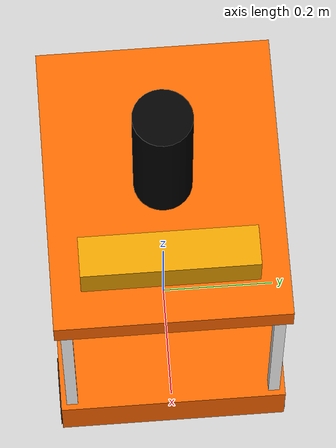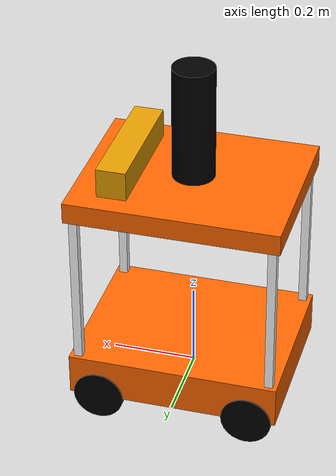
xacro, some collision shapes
<?xml version="1.0"?>
<robot name="arm" xmlns:xacro="http://www.ros.org/wiki/xacro">

    <xacro:include filename="$(find wyf_description)/urdf/wyf_base_gazebo.xacro" />

    <xacro:include filename="$(find wyf_description)/urdf/sensors/kinect_gazebo.xacro" />
   <xacro:include filename="$(find wyf_description)/urdf/sensors/lidar_gazebo.xacro" />

    <xacro:property name="kinect_offset_x" value="0.15" />
    <xacro:property name="kinect_offset_y" value="0" />
    <xacro:property name="kinect_offset_z" value="0.5" />

    <xacro:property name="lidar_offset_x" value="0" />
    <xacro:property name="lidar_offset_y" value="0" />
    <xacro:property name="lidar_offset_z" value="0.6" />

    <!-- kinect -->
    <joint name="kinect_joint" type="fixed">
        <origin xyz="${kinect_offset_x} ${kinect_offset_y} ${kinect_offset_z}" rpy="0 0 0" />
        <parent link="base_link"/>
        <child link="kinect_link"/>
    </joint>

    <xacro:kinect_camera prefix="kinect"/>

  <!-- lidar -->
    <joint name="lidar_joint" type="fixed">
        <origin xyz="${lidar_offset_x} ${lidar_offset_y} ${lidar_offset_z}" rpy="0 0 0" />
        <parent link="base_link"/>
        <child link="laser_link"/>
    </joint>

    <xacro:rplidar prefix="laser"/>

    <xacro:wyf_base_gazebo/>

</robot>

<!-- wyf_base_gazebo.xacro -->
<robot name="wyf" xmlns:xacro="http://www.ros.org/wiki/xacro">

    <!-- ////////////////////////////////////////////////
   PROPERTY LIST ///////////////////////////////////////
   //////////////////////////////////////////////////// -->

    <xacro:property name="M_PI" value="3.1415926" />
    <xacro:property name="base_mass" value="1" />
    <xacro:property name="base_size_L" value="0.5" />
    <xacro:property name="base_size_W" value="0.4" />
    <xacro:property name="base_size_H" value="0.1" />

    <xacro:property name="wheel_mass" value="0.2" />
    <xacro:property name="wheel_radius" value="0.06" />
    <xacro:property name="wheel_length" value="0.025" />
    <xacro:property name="wheel_joint_x" value="0.18" />
    <xacro:property name="wheel_joint_y" value="0.19" />
    <xacro:property name="wheel_joint_z" value="0.05" />

    <xacro:property name="pole_mass" value="0.2" />
    <xacro:property name="pole_size_L" value="0.02" />
    <xacro:property name="pole_size_W" value="0.02" />
    <xacro:property name="pole_size_H" value="0.45" />
    <xacro:property name="pole_joint_x" value="0.23" />
    <xacro:property name="pole_joint_y" value="0.18" />
    <xacro:property name="pole_joint_z" value="0.2" />

    <!-- ////////////////////////////////////////////////
   Defining the colors used in this robot///////////////
   //////////////////////////////////////////////////// -->

    <material name="yellow">
        <color rgba="1 0.4 0 1" />
    </material>
    <material name="black">
        <color rgba="0 0 0 0.95" />
    </material>
    <material name="gray">
        <color rgba="0.75 0.75 0.75 1" />
    </material>
    <material name="White">
        <color rgba="1 1 1 1" />
    </material>
    <material name="Blue">
        <color rgba="0 0 1 1" />
    </material>

    <!-- ////////////////////////////////////////////////
   Macro for inertia matrix/////////////////////////////
   //////////////////////////////////////////////////// -->
    <xacro:macro name="cylinder_inertial_matrix" params="m r h">
        <inertial>
            <mass value="${m}" />
            <inertia ixx="${m*(3*r*r+h*h)/12}" ixy="0" ixz="0" iyy="${m*(3*r*r+h*h)/12}" iyz="0" izz="${m*r*r/2}" />
        </inertial>
    </xacro:macro>

    <xacro:macro name="box_inertial_matrix" params="m a b c">
        <inertial>
            <mass value="${m}" />
            <inertia ixx="${m*(b*b+c*c)/12}" ixy="0" ixz="0" iyy="${m*(c*c+a*a)/12}" iyz="0" izz="${m*(a*a+b*b)/12}" />
        </inertial>
    </xacro:macro>

    <!-- ////////////////////////////////////////////////
   Macro for robot wheel/////////////////////////////
   //////////////////////////////////////////////////// -->

    <xacro:macro name="wheel" params="prefix1 prefix2 reflect1 reflect2">

        <joint name="${prefix1}_${prefix2}_wheel_joint" type="continuous">

            <origin xyz="${reflect1*wheel_joint_x} ${reflect2*wheel_joint_y} ${-wheel_joint_z}" rpy="0 0 0" />
            <parent link="base_link" />
            <child link="${prefix1}_${prefix2}_wheel_link" />
            <axis xyz="0 1 0" />
<limit effort="100" velocity="100"/>  			<!--limit 设置关节的速度、力和半径（仅当关节是revolute或prismatic时）-->
        <joint_properties damping="0.0" friction="0.0"/>  	<!--joint_properties设置一些属性 阻尼系数 摩擦系数-->

        </joint>

        <link name="${prefix1}_${prefix2}_wheel_link">
            <visual>
                <origin xyz="0 0 0" rpy="${M_PI/2} 0 0" />

                <geometry>
                    <cylinder radius="${wheel_radius}" length="${wheel_length}" />
                </geometry>

                <material name="black" />
            </visual>

            <collision>
                <origin xyz="0 0 0" rpy="${M_PI/2} 0 0" />

                <geometry>
                    <cylinder radius="${wheel_radius}" length="${wheel_length}" />
                </geometry>

            </collision>

            <xacro:cylinder_inertial_matrix m="${wheel_mass}" r="${wheel_radius}" h="${wheel_length}" />
        </link>

        <gazebo reference="${prefix1}_${prefix2}_wheel_link">
            <material>Gazebo/Black</material>
        </gazebo>

        <!-- /////////////////////////////////////////////////Transmission is important to link the joints and the controller //////////////////////////////////-->
        <transmission name="${prefix1}_${prefix2}_wheel_joint_trans">
            <type>transmission_interface/SimpleTransmission</type>
            <joint name="${prefix1}_${prefix2}_wheel_joint">
                <hardwareInterface>hardware_interface/VelocityJointInterface</hardwareInterface>
            </joint>

            <actuator name="${prefix1}_${prefix2}_wheel_joint_motor">
                <hardwareInterface>hardware_interface/VelocityJointInterface</hardwareInterface>
                <mechanicalReduction>1</mechanicalReduction>
            </actuator>

        </transmission>
    </xacro:macro>

    <!-- ////////////////////////////////////////////////
   Macro for robot pole/////////////////////////////
   //////////////////////////////////////////////////// -->

    <xacro:macro name="pole" params="prefix1 prefix2 reflect1 reflect2">

        <joint name="${prefix1}_${prefix2}_pole_joint" type="fixed">

            <origin xyz="${reflect1*pole_joint_x} ${reflect2*pole_joint_y} ${pole_joint_z}" rpy="0 0 0" />
            <parent link="base_link" />
            <child link="${prefix1}_${prefix2}_pole_link" />
            <axis xyz="0 1 0" />
            <limit effort="100" velocity="100"/>  			<!--limit 设置关节的速度、力和半径（仅当关节是revolute或prismatic时）-->
        <joint_properties damping="0.0" friction="0.0"/>  	<!--joint_properties设置一些属性 阻尼系数 摩擦系数-->
        </joint>

        <link name="${prefix1}_${prefix2}_pole_link">
            <visual>
                <origin xyz="0 0 0" rpy="0 0 0" />
                <geometry>
                    <box size="${pole_size_L} ${pole_size_W} ${pole_size_H}" />
                </geometry>
                <material name="White" />
            </visual>

            <collision>
                <origin xyz="0 0 0" rpy="0 0 0" />
                <geometry>
                    <box size="${pole_size_L} ${pole_size_W} ${pole_size_H}" />
                </geometry>
            </collision>

            <xacro:box_inertial_matrix m="${pole_mass}" a="${pole_size_L}" b="${pole_size_W}" c="${pole_size_H}" />
        </link>

        <gazebo reference="${prefix1}_${prefix2}_pole_link">
            <material>Gazebo/White</material>
        </gazebo>
    </xacro:macro>

    <!-- ////////////////////////////////////////////////
footprint      /////////////////////////////
   //////////////////////////////////////////////////// -->
    <xacro:macro name="wyf_base_gazebo">

        <link name="base_footprint">
            <visual>
                <origin xyz="0 0 0" rqy="0 0 0" />
                <geometry>
                    <box size="0.001 0.001 0.001" />
                </geometry>
            </visual>
        </link>

        <gazebo reference="base_footprint">
            <turnGravityOff>false</turnGravityOff>
        </gazebo>

        <!-- ////////////////////////////////////////////////
 base_link         /////////////////////////////
   //////////////////////////////////////////////////// -->

        <joint name="base_footprint_joint" type="fixed">
            <origin xyz="0 0 ${base_size_H/2}" rpy="0 0 0" />
            <parent link="base_footprint" />
            <child link="base_link" />
            <limit effort="100" velocity="100"/>  			<!--limit 设置关节的速度、力和半径（仅当关节是revolute或prismatic时）-->
        <joint_properties damping="0.0" friction="0.0"/>  	<!--joint_properties设置一些属性 阻尼系数 摩擦系数-->
        </joint>

        <link name="base_link">

            <visual>
                <origin xyz=" 0 0 0" rpy="0 0 0" />
                <geometry>
                    <box size="${base_size_L} ${base_size_W} ${base_size_H}" />
                </geometry>
                <material name="yellow" />
            </visual>

            <collision>
                <origin xyz=" 0 0 0" rpy="0 0 0" />
                <geometry>
                    <box size="${base_size_L} ${base_size_W} ${base_size_H}" />
                </geometry>
            </collision>

            <xacro:box_inertial_matrix m="${base_mass}" a="${base_size_L}" b="${base_size_W}" c="${base_size_H}" />

        </link>

        <gazebo reference="base_link">
            <material>Gazebo/Blue</material>
        </gazebo>

        <!-- ////////////////////////////////////////////////
up_link         /////////////////////////////
   //////////////////////////////////////////////////// -->

        <joint name="up_base_joint" type="fixed">
            <origin xyz="0 0 ${pole_size_H}" rpy="0 0 0" />
            <parent link="base_link" />
            <child link="up_link" />
            <limit effort="100" velocity="100"/>  			<!--limit 设置关节的速度、力和半径（仅当关节是revolute或prismatic时）-->
        <joint_properties damping="0.0" friction="0.0"/>  	<!--joint_properties设置一些属性 阻尼系数 摩擦系数-->
        </joint>

        <link name="up_link">

            <visual>
                <origin xyz=" 0 0 0" rpy="0 0 0" />
                <geometry>
                    <box size="${base_size_L} ${base_size_W} ${base_size_H/2}" />
                </geometry>
                <material name="yellow" />
            </visual>

            <collision>
                <origin xyz=" 0 0 0" rpy="0 0 0" />
                <geometry>
                    <box size="${base_size_L} ${base_size_W} ${base_size_H}" />
                </geometry>
            </collision>

            <xacro:box_inertial_matrix m="${base_mass}" a="${base_size_L}" b="${base_size_W}" c="${base_size_H}" />

        </link>

        <gazebo reference="up_link">
            <material>Gazebo/Blue</material>
        </gazebo>

        <!-- ////////////////////////////////////////////////
   宏调用///////////////////////////////////////////
   //////////////////////////////////////////////////// -->

        <xacro:wheel prefix1="left" prefix2="front" reflect1="1" reflect2="1" />
        <xacro:wheel prefix1="left" prefix2="back" reflect1="-1" reflect2="1" />
        <xacro:wheel prefix1="right" prefix2="front" reflect1="1" reflect2="-1" />
        <xacro:wheel prefix1="right" prefix2="back" reflect1="-1" reflect2="-1" />

        <xacro:pole prefix1="left" prefix2="front" reflect1="1" reflect2="1" />
        <xacro:pole prefix1="left" prefix2="back" reflect1="-1" reflect2="1" />
        <xacro:pole prefix1="right" prefix2="front" reflect1="1" reflect2="-1" />
        <xacro:pole prefix1="right" prefix2="back" reflect1="-1" reflect2="-1" />

        <!-- ////////////////////////////////////////////////
   controller///////////////////////////////////////////
   //////////////////////////////////////////////////// -->
          <gazebo>
            <plugin name="skid_steer_drive_controller" filename="libgazebo_ros_skid_steer_drive.so">

                <rosDebugLevel>Debug</rosDebugLevel>
                <publishWheelTF>true</publishWheelTF>
                <robotNamespace>/</robotNamespace>
                <publishTf>1</publishTf>
                <publishWheelJointState>true</publishWheelJointState>
                <alwaysOn>true</alwaysOn>
                <updateRate>100.0</updateRate>
                <legacyMode>true</legacyMode>

               <leftFrontJoint>left_front_wheel_joint</leftFrontJoint>
               <rightFrontJoint>right_front_wheel_joint</rightFrontJoint>
               <leftRearJoint>left_back_wheel_joint</leftRearJoint>
                <rightRearJoint>right_back_wheel_joint</rightRearJoint>

                <wheelSeparation>${wheel_joint_y*2}</wheelSeparation>
                <wheelDiameter>${2*wheel_radius}</wheelDiameter>
                <broadcastTF>1</broadcastTF>
                <wheelTorque>30</wheelTorque>
                <wheelAcceleration>1.8</wheelAcceleration>
                <commandTopic>cmd_vel</commandTopic>
                <odometryFrame>odom</odometryFrame>
                <odometryTopic>odom</odometryTopic>
                <robotBaseFrame>base_footprint</robotBaseFrame>
            </plugin>
        </gazebo>
    </xacro:macro>

</robot>

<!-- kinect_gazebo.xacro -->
<robot xmlns:xacro="http://www.ros.org/wiki/xacro" name="kinect_camera">

    <xacro:macro name="kinect_camera" params="prefix:=camera">
        <!-- Create kinect reference frame -->
        <!-- Add mesh for kinect -->
        <link name="${prefix}_link">
            <origin xyz="0 0 0" rpy="0 0 0"/>
            <visual>
                <origin xyz="0 0 0" rpy="0 0 ${M_PI/2}"/>
                <geometry>
                    <mesh filename="package://wyf_description/meshes/kinect.dae" />
                </geometry>
            </visual>
            <collision>
                <geometry>
                    <box size="0.07 0.3 0.09"/>
                </geometry>
            </collision>
        </link>

        <joint name="${prefix}_optical_joint" type="fixed">
            <origin xyz="0 0 0" rpy="-1.5708 0 -1.5708"/>
            <parent link="${prefix}_link"/>
            <child link="${prefix}_frame_optical"/>
        </joint>

        <link name="${prefix}_frame_optical"/>

        <gazebo reference="${prefix}_link">
            <sensor type="depth" name="${prefix}">
                <always_on>true</always_on>
                <update_rate>20.0</update_rate>
                <camera>
                    <horizontal_fov>${60.0*M_PI/180.0}</horizontal_fov>
                    <image>
                        <format>R8G8B8</format>
                        <width>640</width>
                        <height>480</height>
                    </image>
                    <clip>
                        <near>0.05</near>
                        <far>8.0</far>
                    </clip>
                </camera>
                <plugin name="kinect_${prefix}_controller" filename="libgazebo_ros_openni_kinect.so">
                    <cameraName>${prefix}</cameraName>
                    <alwaysOn>true</alwaysOn>
                    <updateRate>10</updateRate>
                    <imageTopicName>rgb/image_raw</imageTopicName>
                    <depthImageTopicName>depth/image_raw</depthImageTopicName>
                    <pointCloudTopicName>depth/points</pointCloudTopicName>
                    <cameraInfoTopicName>rgb/camera_info</cameraInfoTopicName>
                    <depthImageCameraInfoTopicName>depth/camera_info</depthImageCameraInfoTopicName>
                    <frameName>${prefix}_frame_optical</frameName>
                    <baseline>0.1</baseline>
                    <distortion_k1>0.0</distortion_k1>
                    <distortion_k2>0.0</distortion_k2>
                    <distortion_k3>0.0</distortion_k3>
                    <distortion_t1>0.0</distortion_t1>
                    <distortion_t2>0.0</distortion_t2>
                    <pointCloudCutoff>0.4</pointCloudCutoff>
                </plugin>
            </sensor>
        </gazebo>

    </xacro:macro>
</robot>

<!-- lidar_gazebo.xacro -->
<robot xmlns:xacro="http://www.ros.org/wiki/xacro" name="laser">

    <xacro:macro name="rplidar" params="prefix:=laser">
        <!-- Create laser reference frame -->
        <link name="${prefix}_link">
            <inertial>
                <mass value="0.1" />
                <origin xyz="0 0 0" />
                <inertia ixx="0.01" ixy="0.0" ixz="0.0"
                         iyy="0.01" iyz="0.0"
                         izz="0.01" />
            </inertial>

            <visual>
                <origin xyz=" 0 0 0 " rpy="0 0 0" />
                <geometry>
                    <cylinder length="0.3" radius="0.05"/>
                </geometry>
                <material name="black"/>
            </visual>

            <collision>
                <origin xyz="0.0 0.0 0.0" rpy="0 0 0" />
                <geometry>
                    <cylinder length="0.3" radius="0.05"/>
                </geometry>
            </collision>
        </link>
        <gazebo reference="${prefix}_link">
            <material>Gazebo/Black</material>
        </gazebo>

        <gazebo reference="${prefix}_link">
            <sensor type="ray" name="rplidar">
                <pose>0 0 0 0 0 0</pose>
                <visualize>false</visualize>
                <update_rate>5.5</update_rate>
                <ray>
                    <scan>
                      <horizontal>
                        <samples>360</samples>
                        <resolution>1</resolution>
                        <min_angle>-3</min_angle>
                        <max_angle>3</max_angle>
                      </horizontal>
                    </scan>
                    <range>
                      <min>0.10</min>
                      <max>6.0</max>
                      <resolution>0.01</resolution>
                    </range>
                    <noise>
                      <type>gaussian</type>
                      <mean>0.0</mean>
                      <stddev>0.01</stddev>
                    </noise>
                </ray>
                <plugin name="gazebo_rplidar" filename="libgazebo_ros_laser.so">
                    <topicName>/scan</topicName>
                    <frameName>laser_link</frameName>
                </plugin>
            </sensor>
        </gazebo>

    </xacro:macro>
</robot>
